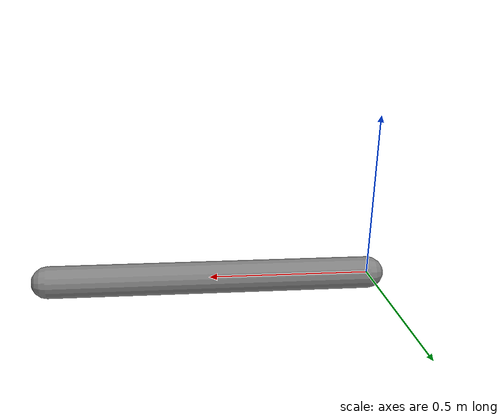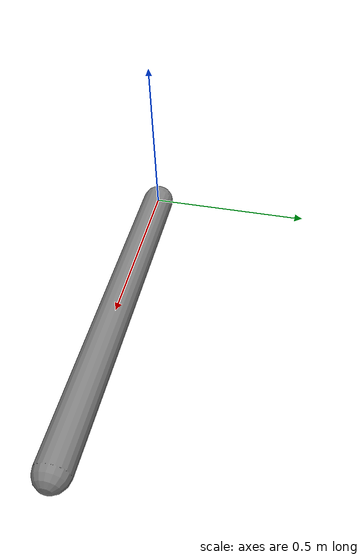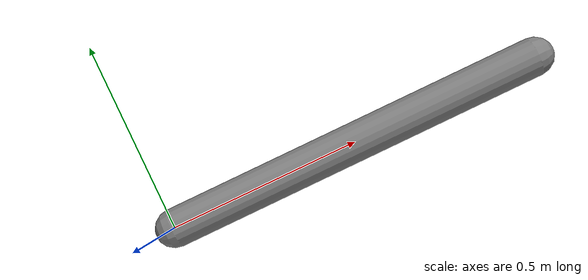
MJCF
<mujoco model="sensor_pendulum">
    <option timestep="0.002" gravity="0 0 0"/>
    <worldbody>
        <body name="arm">
            <joint name="hinge" type="hinge" axis="0 0 1"/>
            <geom type="capsule" fromto="0 0 0 1 0 0" size="0.05" mass="1"/>
            <site name="tip" pos="1 0 0" size="0.01"/>
        </body>
    </worldbody>
    <actuator>
        <motor name="motor" joint="hinge" gear="1"/>
    </actuator>
    <sensor>
        <jointpos name="angle" joint="hinge"/>
        <jointvel name="velocity" joint="hinge"/>
        <framepos name="tip_position" objtype="site" objname="tip"/>
        <gyro site="tip"/>
    </sensor>
</mujoco>
